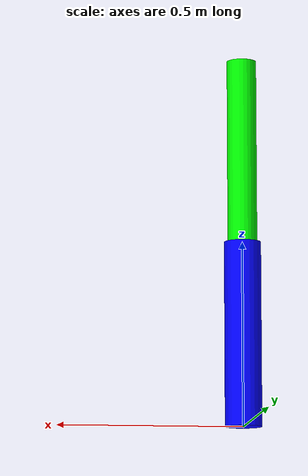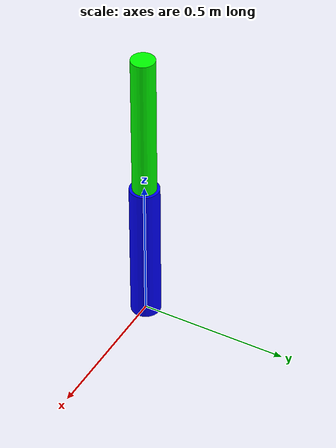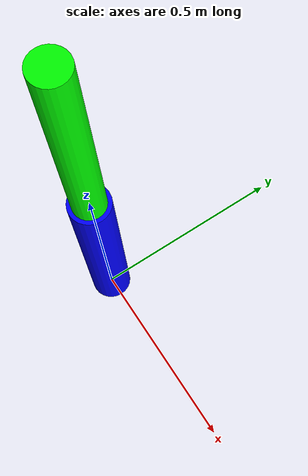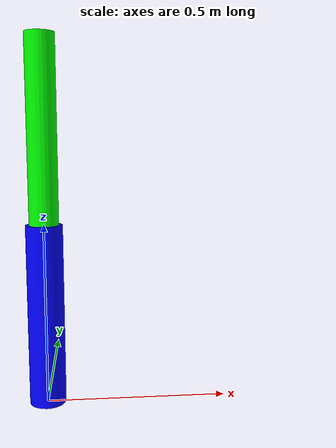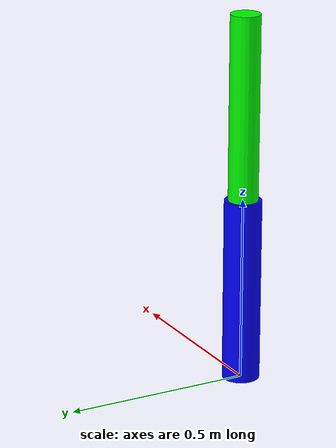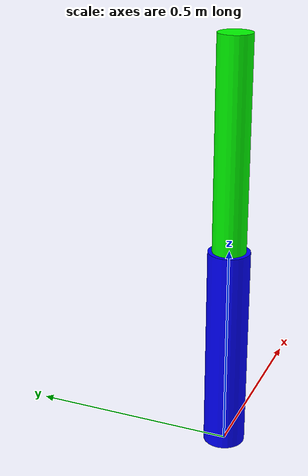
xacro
<?xml version="1.0"?>
<robot xmlns:xacro="http://ros.org/wiki/xacro" name="two_dof_arm">

  <!-- Constants -->
  <xacro:property name="PI" value="3.1415"/>
  <xacro:property name="link1_length" value="0.5"/>
  <xacro:property name="link2_length" value="0.5"/>

  <!-- Base Link -->
  <link name="base_link"/>

  <!-- Link 1 -->
  <link name="link1">
    <visual>
      <origin xyz="0 0 ${link1_length / 2}" rpy="0 0 0"/>
      <geometry>
        <cylinder length="${link1_length}" radius="0.05"/>
      </geometry>
      <material name="blue">
        <color rgba="0 0 1 1"/>
      </material>
    </visual>
  </link>

  <!-- Joint 1 -->
  <joint name="joint1" type="revolute">
    <parent link="base_link"/>
    <child link="link1"/>
    <origin xyz="0 0 0" rpy="0 0 0"/>
    <axis xyz="0 0 1"/>
    <limit lower="${-PI/2}" upper="${PI/2}" effort="10" velocity="1"/>
  </joint>

  <!-- Link 2 -->
  <link name="link2">
    <visual>
      <origin xyz="0 0 ${link2_length / 2}" rpy="0 0 0"/>
      <geometry>
        <cylinder length="${link2_length}" radius="0.04"/>
      </geometry>
      <material name="green">
        <color rgba="0 1 0 1"/>
      </material>
    </visual>
  </link>

  <!-- Joint 2 -->
  <joint name="joint2" type="revolute">
    <parent link="link1"/>
    <child link="link2"/>
    <origin xyz="0 0 ${link1_length}" rpy="0 0 0"/>
    <axis xyz="0 0 1"/>
    <limit lower="${-PI/2}" upper="${PI/2}" effort="10" velocity="1"/>
  </joint>

</robot>
